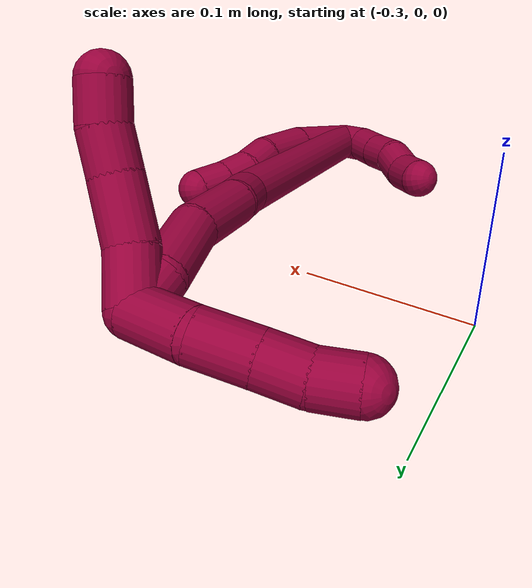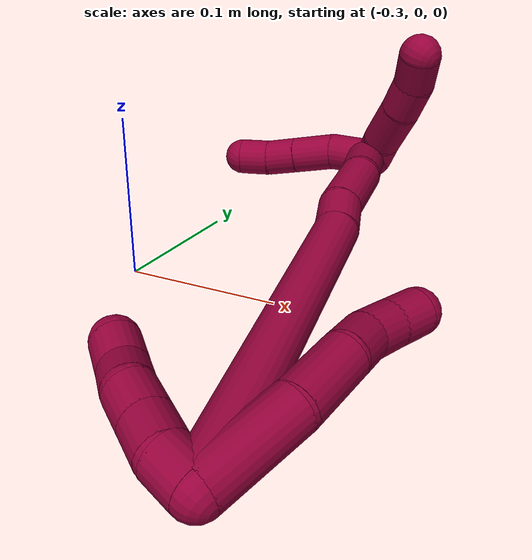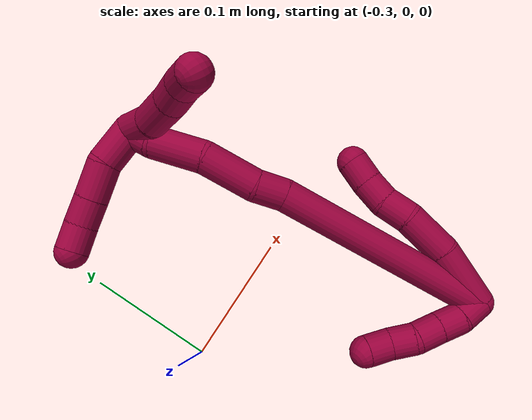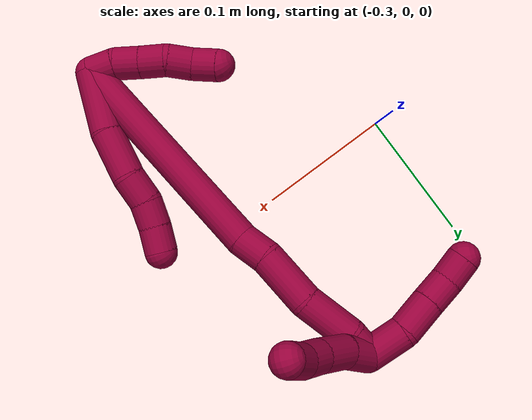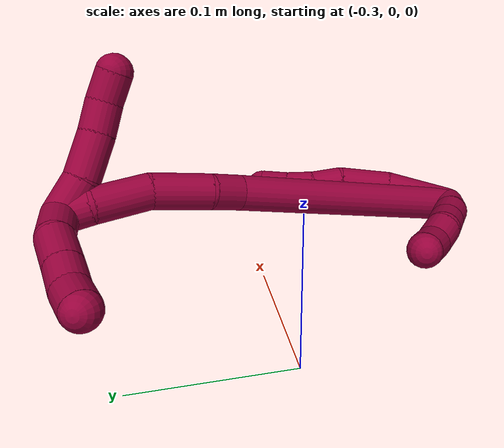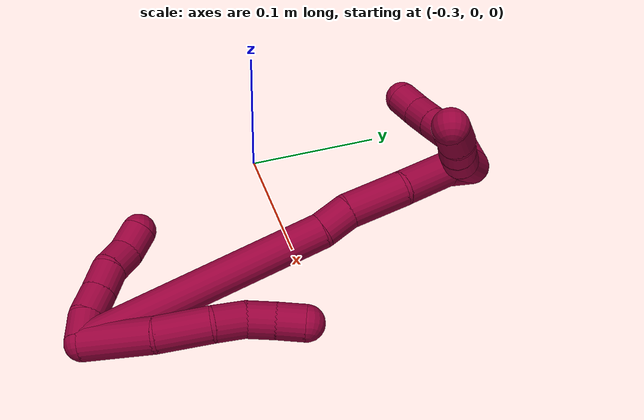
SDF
<sdf version="1.7">
 <world name="default">
  <model name="8">
   <static>0</static>
   <link name="8">
    <collision name="collision-cylinder-e_1_2_8">
     <pose>0.008468 0.023649 0.001055 -1.52622 0.343532 -0.328824</pose>
     <geometry><cylinder><radius>0.0125</radius><length>0.050283</length></cylinder></geometry>
     <surface>
      <friction><ode><mu>1.16</mu><mu2>1.16</mu2><slip1>0</slip1><slip2>0</slip2></ode></friction>
      <contact><ode><kp>1e+06</kp><kd>1</kd><max_vel>0</max_vel><min_depth>0.001</min_depth></ode></contact>
     </surface>
    </collision>
    <visual name="visual-cylinder-e_1_2_8">
     <pose>0.008468 0.023649 0.001055 -1.52622 0.343532 -0.328824</pose>
     <geometry><cylinder><radius>0.0125</radius><length>0.050283</length></cylinder></geometry>
     <material><ambient>0.584314 0 0.227451 1</ambient></material>
    </visual>
    <collision name="collision-cylinder-e_2_8_9">
     <pose>0.020432 0.065397 0.005538 -1.38359 0.187533 -0.155487</pose>
     <geometry><cylinder><radius>0.0125</radius><length>0.0375</length></cylinder></geometry>
     <surface>
      <friction><ode><mu>1.16</mu><mu2>1.16</mu2><slip1>0</slip1><slip2>0</slip2></ode></friction>
      <contact><ode><kp>1e+06</kp><kd>1</kd><max_vel>0</max_vel><min_depth>0.001</min_depth></ode></contact>
     </surface>
    </collision>
    <visual name="visual-cylinder-e_2_8_9">
     <pose>0.020432 0.065397 0.005538 -1.38359 0.187533 -0.155487</pose>
     <geometry><cylinder><radius>0.0125</radius><length>0.0375</length></cylinder></geometry>
     <material><ambient>0.584314 0 0.227451 1</ambient></material>
    </visual>
    <collision name="collision-cylinder-e_3_9_10">
     <pose>0.023272 0.094221 0.011611 -1.32908 -0.059243 0.046417</pose>
     <geometry><cylinder><radius>0.0125</radius><length>0.02213</length></cylinder></geometry>
     <surface>
      <friction><ode><mu>1.16</mu><mu2>1.16</mu2><slip1>0</slip1><slip2>0</slip2></ode></friction>
      <contact><ode><kp>1e+06</kp><kd>1</kd><max_vel>0</max_vel><min_depth>0.001</min_depth></ode></contact>
     </surface>
    </collision>
    <visual name="visual-cylinder-e_3_9_10">
     <pose>0.023272 0.094221 0.011611 -1.32908 -0.059243 0.046417</pose>
     <geometry><cylinder><radius>0.0125</radius><length>0.02213</length></cylinder></geometry>
     <material><ambient>0.584314 0 0.227451 1</ambient></material>
    </visual>
    <collision name="collision-cylinder-e_4_10_11">
     <pose>0.023068 0.114965 0.014178 -1.5785 0.045033 -0.045381</pose>
     <geometry><cylinder><radius>0.0125</radius><length>0.02006</length></cylinder></geometry>
     <surface>
      <friction><ode><mu>1.16</mu><mu2>1.16</mu2><slip1>0</slip1><slip2>0</slip2></ode></friction>
      <contact><ode><kp>1e+06</kp><kd>1</kd><max_vel>0</max_vel><min_depth>0.001</min_depth></ode></contact>
     </surface>
    </collision>
    <visual name="visual-cylinder-e_4_10_11">
     <pose>0.023068 0.114965 0.014178 -1.5785 0.045033 -0.045381</pose>
     <geometry><cylinder><radius>0.0125</radius><length>0.02006</length></cylinder></geometry>
     <material><ambient>0.584314 0 0.227451 1</ambient></material>
    </visual>
    <collision name="collision-cylinder-e_5_11_6">
     <pose>0.024906 0.134874 0.013363 -1.6452 0.13887 -0.149568</pose>
     <geometry><cylinder><radius>0.0125</radius><length>0.020027</length></cylinder></geometry>
     <surface>
      <friction><ode><mu>1.16</mu><mu2>1.16</mu2><slip1>0</slip1><slip2>0</slip2></ode></friction>
      <contact><ode><kp>1e+06</kp><kd>1</kd><max_vel>0</max_vel><min_depth>0.001</min_depth></ode></contact>
     </surface>
    </collision>
    <visual name="visual-cylinder-e_5_11_6">
     <pose>0.024906 0.134874 0.013363 -1.6452 0.13887 -0.149568</pose>
     <geometry><cylinder><radius>0.0125</radius><length>0.020027</length></cylinder></geometry>
     <material><ambient>0.584314 0 0.227451 1</ambient></material>
    </visual>
    <collision name="collision-cylinder-e_1_2_12">
     <pose>-0.001628 0.00021 0.009864 -0.021312 -0.163513 0.001746</pose>
     <geometry><cylinder><radius>0.0125</radius><length>0.02</length></cylinder></geometry>
     <surface>
      <friction><ode><mu>1.16</mu><mu2>1.16</mu2><slip1>0</slip1><slip2>0</slip2></ode></friction>
      <contact><ode><kp>1e+06</kp><kd>1</kd><max_vel>0</max_vel><min_depth>0.001</min_depth></ode></contact>
     </surface>
    </collision>
    <visual name="visual-cylinder-e_1_2_12">
     <pose>-0.001628 0.00021 0.009864 -0.021312 -0.163513 0.001746</pose>
     <geometry><cylinder><radius>0.0125</radius><length>0.02</length></cylinder></geometry>
     <material><ambient>0.584314 0 0.227451 1</ambient></material>
    </visual>
    <collision name="collision-cylinder-e_2_12_13">
     <pose>-0.005033 0.003394 0.02911 -0.306939 -0.178652 0.027707</pose>
     <geometry><cylinder><radius>0.0125</radius><length>0.02</length></cylinder></geometry>
     <surface>
      <friction><ode><mu>1.16</mu><mu2>1.16</mu2><slip1>0</slip1><slip2>0</slip2></ode></friction>
      <contact><ode><kp>1e+06</kp><kd>1</kd><max_vel>0</max_vel><min_depth>0.001</min_depth></ode></contact>
     </surface>
    </collision>
    <visual name="visual-cylinder-e_2_12_13">
     <pose>-0.005033 0.003394 0.02911 -0.306939 -0.178652 0.027707</pose>
     <geometry><cylinder><radius>0.0125</radius><length>0.02</length></cylinder></geometry>
     <material><ambient>0.584314 0 0.227451 1</ambient></material>
    </visual>
    <collision name="collision-cylinder-e_3_13_14">
     <pose>-0.008141 0.009091 0.04802 -0.278398 -0.133494 0.018731</pose>
     <geometry><cylinder><radius>0.0125</radius><length>0.02</length></cylinder></geometry>
     <surface>
      <friction><ode><mu>1.16</mu><mu2>1.16</mu2><slip1>0</slip1><slip2>0</slip2></ode></friction>
      <contact><ode><kp>1e+06</kp><kd>1</kd><max_vel>0</max_vel><min_depth>0.001</min_depth></ode></contact>
     </surface>
    </collision>
    <visual name="visual-cylinder-e_3_13_14">
     <pose>-0.008141 0.009091 0.04802 -0.278398 -0.133494 0.018731</pose>
     <geometry><cylinder><radius>0.0125</radius><length>0.02</length></cylinder></geometry>
     <material><ambient>0.584314 0 0.227451 1</ambient></material>
    </visual>
    <collision name="collision-cylinder-e_4_14_15">
     <pose>-0.013006 0.016632 0.065568 -0.541002 -0.361201 0.101177</pose>
     <geometry><cylinder><radius>0.0125</radius><length>0.02</length></cylinder></geometry>
     <surface>
      <friction><ode><mu>1.16</mu><mu2>1.16</mu2><slip1>0</slip1><slip2>0</slip2></ode></friction>
      <contact><ode><kp>1e+06</kp><kd>1</kd><max_vel>0</max_vel><min_depth>0.001</min_depth></ode></contact>
     </surface>
    </collision>
    <visual name="visual-cylinder-e_4_14_15">
     <pose>-0.013006 0.016632 0.065568 -0.541002 -0.361201 0.101177</pose>
     <geometry><cylinder><radius>0.0125</radius><length>0.02</length></cylinder></geometry>
     <material><ambient>0.584314 0 0.227451 1</ambient></material>
    </visual>
    <collision name="collision-cylinder-e_5_15_5">
     <pose>-0.017167 0.025317 0.082788 -0.397935 -0.062746 0.012656</pose>
     <geometry><cylinder><radius>0.0125</radius><length>0.02</length></cylinder></geometry>
     <surface>
      <friction><ode><mu>1.16</mu><mu2>1.16</mu2><slip1>0</slip1><slip2>0</slip2></ode></friction>
      <contact><ode><kp>1e+06</kp><kd>1</kd><max_vel>0</max_vel><min_depth>0.001</min_depth></ode></contact>
     </surface>
    </collision>
    <visual name="visual-cylinder-e_5_15_5">
     <pose>-0.017167 0.025317 0.082788 -0.397935 -0.062746 0.012656</pose>
     <geometry><cylinder><radius>0.0125</radius><length>0.02</length></cylinder></geometry>
     <material><ambient>0.584314 0 0.227451 1</ambient></material>
    </visual>
    <collision name="collision-cylinder-e_1_2_16">
     <pose>0.014669 0.076989 0.039425 -1.09753 0.16799 -0.102862</pose>
     <geometry><cylinder><radius>0.0125</radius><length>0.175464</length></cylinder></geometry>
     <surface>
      <friction><ode><mu>1.16</mu><mu2>1.16</mu2><slip1>0</slip1><slip2>0</slip2></ode></friction>
      <contact><ode><kp>1e+06</kp><kd>1</kd><max_vel>0</max_vel><min_depth>0.001</min_depth></ode></contact>
     </surface>
    </collision>
    <visual name="visual-cylinder-e_1_2_16">
     <pose>0.014669 0.076989 0.039425 -1.09753 0.16799 -0.102862</pose>
     <geometry><cylinder><radius>0.0125</radius><length>0.175464</length></cylinder></geometry>
     <material><ambient>0.584314 0 0.227451 1</ambient></material>
    </visual>
    <collision name="collision-cylinder-e_2_16_17">
     <pose>0.031112 0.162647 0.085995 -0.881399 0.156612 -0.073981</pose>
     <geometry><cylinder><radius>0.0125</radius><length>0.022746</length></cylinder></geometry>
     <surface>
      <friction><ode><mu>1.16</mu><mu2>1.16</mu2><slip1>0</slip1><slip2>0</slip2></ode></friction>
      <contact><ode><kp>1e+06</kp><kd>1</kd><max_vel>0</max_vel><min_depth>0.001</min_depth></ode></contact>
     </surface>
    </collision>
    <visual name="visual-cylinder-e_2_16_17">
     <pose>0.031112 0.162647 0.085995 -0.881399 0.156612 -0.073981</pose>
     <geometry><cylinder><radius>0.0125</radius><length>0.022746</length></cylinder></geometry>
     <material><ambient>0.584314 0 0.227451 1</ambient></material>
    </visual>
    <collision name="collision-cylinder-e_3_17_18">
     <pose>0.035444 0.189962 0.102012 -1.12672 0.123269 -0.07792</pose>
     <geometry><cylinder><radius>0.0125</radius><length>0.041615</length></cylinder></geometry>
     <surface>
      <friction><ode><mu>1.16</mu><mu2>1.16</mu2><slip1>0</slip1><slip2>0</slip2></ode></friction>
      <contact><ode><kp>1e+06</kp><kd>1</kd><max_vel>0</max_vel><min_depth>0.001</min_depth></ode></contact>
     </surface>
    </collision>
    <visual name="visual-cylinder-e_3_17_18">
     <pose>0.035444 0.189962 0.102012 -1.12672 0.123269 -0.07792</pose>
     <geometry><cylinder><radius>0.0125</radius><length>0.041615</length></cylinder></geometry>
     <material><ambient>0.584314 0 0.227451 1</ambient></material>
    </visual>
    <collision name="collision-cylinder-e_4_18_19">
     <pose>0.0356 0.225327 0.121195 -1.01814 -0.1217 0.067983</pose>
     <geometry><cylinder><radius>0.0125</radius><length>0.039576</length></cylinder></geometry>
     <surface>
      <friction><ode><mu>1.16</mu><mu2>1.16</mu2><slip1>0</slip1><slip2>0</slip2></ode></friction>
      <contact><ode><kp>1e+06</kp><kd>1</kd><max_vel>0</max_vel><min_depth>0.001</min_depth></ode></contact>
     </surface>
    </collision>
    <visual name="visual-cylinder-e_4_18_19">
     <pose>0.0356 0.225327 0.121195 -1.01814 -0.1217 0.067983</pose>
     <geometry><cylinder><radius>0.0125</radius><length>0.039576</length></cylinder></geometry>
     <material><ambient>0.584314 0 0.227451 1</ambient></material>
    </visual>
    <collision name="collision-cylinder-e_5_19_1">
     <pose>0.031189 0.251719 0.134414 -1.2788 -0.196297 0.146178</pose>
     <geometry><cylinder><radius>0.0125</radius><length>0.020599</length></cylinder></geometry>
     <surface>
      <friction><ode><mu>1.16</mu><mu2>1.16</mu2><slip1>0</slip1><slip2>0</slip2></ode></friction>
      <contact><ode><kp>1e+06</kp><kd>1</kd><max_vel>0</max_vel><min_depth>0.001</min_depth></ode></contact>
     </surface>
    </collision>
    <visual name="visual-cylinder-e_5_19_1">
     <pose>0.031189 0.251719 0.134414 -1.2788 -0.196297 0.146178</pose>
     <geometry><cylinder><radius>0.0125</radius><length>0.020599</length></cylinder></geometry>
     <material><ambient>0.584314 0 0.227451 1</ambient></material>
    </visual>
    <collision name="collision-cylinder-e_1_1_20">
     <pose>0.024013 0.257813 0.151486 0.247566 -0.339954 -0.042702</pose>
     <geometry><cylinder><radius>0.0125</radius><length>0.030994</length></cylinder></geometry>
     <surface>
      <friction><ode><mu>1.16</mu><mu2>1.16</mu2><slip1>0</slip1><slip2>0</slip2></ode></friction>
      <contact><ode><kp>1e+06</kp><kd>1</kd><max_vel>0</max_vel><min_depth>0.001</min_depth></ode></contact>
     </surface>
    </collision>
    <visual name="visual-cylinder-e_1_1_20">
     <pose>0.024013 0.257813 0.151486 0.247566 -0.339954 -0.042702</pose>
     <geometry><cylinder><radius>0.0125</radius><length>0.030994</length></cylinder></geometry>
     <material><ambient>0.584314 0 0.227451 1</ambient></material>
    </visual>
    <collision name="collision-cylinder-e_2_20_21">
     <pose>0.011936 0.248122 0.176005 0.533172 -0.521611 -0.145507</pose>
     <geometry><cylinder><radius>0.0125</radius><length>0.027733</length></cylinder></geometry>
     <surface>
      <friction><ode><mu>1.16</mu><mu2>1.16</mu2><slip1>0</slip1><slip2>0</slip2></ode></friction>
      <contact><ode><kp>1e+06</kp><kd>1</kd><max_vel>0</max_vel><min_depth>0.001</min_depth></ode></contact>
     </surface>
    </collision>
    <visual name="visual-cylinder-e_2_20_21">
     <pose>0.011936 0.248122 0.176005 0.533172 -0.521611 -0.145507</pose>
     <geometry><cylinder><radius>0.0125</radius><length>0.027733</length></cylinder></geometry>
     <material><ambient>0.584314 0 0.227451 1</ambient></material>
    </visual>
    <collision name="collision-cylinder-e_3_21_22">
     <pose>-0.000267 0.237557 0.194322 0.510006 -0.525682 -0.14005</pose>
     <geometry><cylinder><radius>0.0125</radius><length>0.021096</length></cylinder></geometry>
     <surface>
      <friction><ode><mu>1.16</mu><mu2>1.16</mu2><slip1>0</slip1><slip2>0</slip2></ode></friction>
      <contact><ode><kp>1e+06</kp><kd>1</kd><max_vel>0</max_vel><min_depth>0.001</min_depth></ode></contact>
     </surface>
    </collision>
    <visual name="visual-cylinder-e_3_21_22">
     <pose>-0.000267 0.237557 0.194322 0.510006 -0.525682 -0.14005</pose>
     <geometry><cylinder><radius>0.0125</radius><length>0.021096</length></cylinder></geometry>
     <material><ambient>0.584314 0 0.227451 1</ambient></material>
    </visual>
    <collision name="collision-cylinder-e_4_22_4">
     <pose>-0.008953 0.227721 0.210113 0.602268 -0.343059 -0.107501</pose>
     <geometry><cylinder><radius>0.0125</radius><length>0.020177</length></cylinder></geometry>
     <surface>
      <friction><ode><mu>1.16</mu><mu2>1.16</mu2><slip1>0</slip1><slip2>0</slip2></ode></friction>
      <contact><ode><kp>1e+06</kp><kd>1</kd><max_vel>0</max_vel><min_depth>0.001</min_depth></ode></contact>
     </surface>
    </collision>
    <visual name="visual-cylinder-e_4_22_4">
     <pose>-0.008953 0.227721 0.210113 0.602268 -0.343059 -0.107501</pose>
     <geometry><cylinder><radius>0.0125</radius><length>0.020177</length></cylinder></geometry>
     <material><ambient>0.584314 0 0.227451 1</ambient></material>
    </visual>
    <collision name="collision-cylinder-e_1_1_23">
     <pose>0.039603 0.254551 0.133081 2.12565 0.913178 1.44597</pose>
     <geometry><cylinder><radius>0.0125</radius><length>0.026339</length></cylinder></geometry>
     <surface>
      <friction><ode><mu>1.16</mu><mu2>1.16</mu2><slip1>0</slip1><slip2>0</slip2></ode></friction>
      <contact><ode><kp>1e+06</kp><kd>1</kd><max_vel>0</max_vel><min_depth>0.001</min_depth></ode></contact>
     </surface>
    </collision>
    <visual name="visual-cylinder-e_1_1_23">
     <pose>0.039603 0.254551 0.133081 2.12565 0.913178 1.44597</pose>
     <geometry><cylinder><radius>0.0125</radius><length>0.026339</length></cylinder></geometry>
     <material><ambient>0.584314 0 0.227451 1</ambient></material>
    </visual>
    <collision name="collision-cylinder-e_2_23_24">
     <pose>0.064065 0.242694 0.124133 2.32456 1.11527 1.92811</pose>
     <geometry><cylinder><radius>0.0125</radius><length>0.031267</length></cylinder></geometry>
     <surface>
      <friction><ode><mu>1.16</mu><mu2>1.16</mu2><slip1>0</slip1><slip2>0</slip2></ode></friction>
      <contact><ode><kp>1e+06</kp><kd>1</kd><max_vel>0</max_vel><min_depth>0.001</min_depth></ode></contact>
     </surface>
    </collision>
    <visual name="visual-cylinder-e_2_23_24">
     <pose>0.064065 0.242694 0.124133 2.32456 1.11527 1.92811</pose>
     <geometry><cylinder><radius>0.0125</radius><length>0.031267</length></cylinder></geometry>
     <material><ambient>0.584314 0 0.227451 1</ambient></material>
    </visual>
    <collision name="collision-cylinder-e_3_24_25">
     <pose>0.088284 0.234679 0.117133 2.22348 1.21554 1.90603</pose>
     <geometry><cylinder><radius>0.0125</radius><length>0.021715</length></cylinder></geometry>
     <surface>
      <friction><ode><mu>1.16</mu><mu2>1.16</mu2><slip1>0</slip1><slip2>0</slip2></ode></friction>
      <contact><ode><kp>1e+06</kp><kd>1</kd><max_vel>0</max_vel><min_depth>0.001</min_depth></ode></contact>
     </surface>
    </collision>
    <visual name="visual-cylinder-e_3_24_25">
     <pose>0.088284 0.234679 0.117133 2.22348 1.21554 1.90603</pose>
     <geometry><cylinder><radius>0.0125</radius><length>0.021715</length></cylinder></geometry>
     <material><ambient>0.584314 0 0.227451 1</ambient></material>
    </visual>
    <collision name="collision-cylinder-e_4_25_3">
     <pose>0.107833 0.227339 0.114313 1.69149 1.13426 1.24652</pose>
     <geometry><cylinder><radius>0.0125</radius><length>0.020679</length></cylinder></geometry>
     <surface>
      <friction><ode><mu>1.16</mu><mu2>1.16</mu2><slip1>0</slip1><slip2>0</slip2></ode></friction>
      <contact><ode><kp>1e+06</kp><kd>1</kd><max_vel>0</max_vel><min_depth>0.001</min_depth></ode></contact>
     </surface>
    </collision>
    <visual name="visual-cylinder-e_4_25_3">
     <pose>0.107833 0.227339 0.114313 1.69149 1.13426 1.24652</pose>
     <geometry><cylinder><radius>0.0125</radius><length>0.020679</length></cylinder></geometry>
     <material><ambient>0.584314 0 0.227451 1</ambient></material>
    </visual>
    <collision name="collision-sphere-3">
     <pose>0.117203 0.222999 0.113786 0 -0 0</pose>
     <geometry><sphere><radius>0.0125</radius></sphere></geometry>
     <surface>
      <friction><ode><mu>1.16</mu><mu2>1.16</mu2><slip1>0</slip1><slip2>0</slip2></ode></friction>
      <contact><ode><kp>1e+06</kp><kd>1</kd><max_vel>0</max_vel><min_depth>0.001</min_depth></ode></contact>
     </surface>
    </collision>
    <visual name="visual-sphere-3">
     <pose>0.117203 0.222999 0.113786 0 -0 0</pose>
     <geometry><sphere><radius>0.0125</radius></sphere></geometry>
     <material><ambient>0.584314 0 0.227451 1</ambient></material>
    </visual>
    <collision name="collision-sphere-25">
     <pose>0.098463 0.231679 0.114839 0 -0 0</pose>
     <geometry><sphere><radius>0.0125</radius></sphere></geometry>
     <surface>
      <friction><ode><mu>1.16</mu><mu2>1.16</mu2><slip1>0</slip1><slip2>0</slip2></ode></friction>
      <contact><ode><kp>1e+06</kp><kd>1</kd><max_vel>0</max_vel><min_depth>0.001</min_depth></ode></contact>
     </surface>
    </collision>
    <visual name="visual-sphere-25">
     <pose>0.098463 0.231679 0.114839 0 -0 0</pose>
     <geometry><sphere><radius>0.0125</radius></sphere></geometry>
     <material><ambient>0.584314 0 0.227451 1</ambient></material>
    </visual>
    <collision name="collision-sphere-24">
     <pose>0.078105 0.23768 0.119426 0 -0 0</pose>
     <geometry><sphere><radius>0.0125</radius></sphere></geometry>
     <surface>
      <friction><ode><mu>1.16</mu><mu2>1.16</mu2><slip1>0</slip1><slip2>0</slip2></ode></friction>
      <contact><ode><kp>1e+06</kp><kd>1</kd><max_vel>0</max_vel><min_depth>0.001</min_depth></ode></contact>
     </surface>
    </collision>
    <visual name="visual-sphere-24">
     <pose>0.078105 0.23768 0.119426 0 -0 0</pose>
     <geometry><sphere><radius>0.0125</radius></sphere></geometry>
     <material><ambient>0.584314 0 0.227451 1</ambient></material>
    </visual>
    <collision name="collision-sphere-23">
     <pose>0.050026 0.247709 0.12884 0 -0 0</pose>
     <geometry><sphere><radius>0.0125</radius></sphere></geometry>
     <surface>
      <friction><ode><mu>1.16</mu><mu2>1.16</mu2><slip1>0</slip1><slip2>0</slip2></ode></friction>
      <contact><ode><kp>1e+06</kp><kd>1</kd><max_vel>0</max_vel><min_depth>0.001</min_depth></ode></contact>
     </surface>
    </collision>
    <visual name="visual-sphere-23">
     <pose>0.050026 0.247709 0.12884 0 -0 0</pose>
     <geometry><sphere><radius>0.0125</radius></sphere></geometry>
     <material><ambient>0.584314 0 0.227451 1</ambient></material>
    </visual>
    <collision name="collision-sphere-4">
     <pose>-0.012347 0.222339 0.217942 0 -0 0</pose>
     <geometry><sphere><radius>0.0125</radius></sphere></geometry>
     <surface>
      <friction><ode><mu>1.16</mu><mu2>1.16</mu2><slip1>0</slip1><slip2>0</slip2></ode></friction>
      <contact><ode><kp>1e+06</kp><kd>1</kd><max_vel>0</max_vel><min_depth>0.001</min_depth></ode></contact>
     </surface>
    </collision>
    <visual name="visual-sphere-4">
     <pose>-0.012347 0.222339 0.217942 0 -0 0</pose>
     <geometry><sphere><radius>0.0125</radius></sphere></geometry>
     <material><ambient>0.584314 0 0.227451 1</ambient></material>
    </visual>
    <collision name="collision-sphere-22">
     <pose>-0.00556 0.233103 0.202284 0 -0 0</pose>
     <geometry><sphere><radius>0.0125</radius></sphere></geometry>
     <surface>
      <friction><ode><mu>1.16</mu><mu2>1.16</mu2><slip1>0</slip1><slip2>0</slip2></ode></friction>
      <contact><ode><kp>1e+06</kp><kd>1</kd><max_vel>0</max_vel><min_depth>0.001</min_depth></ode></contact>
     </surface>
    </collision>
    <visual name="visual-sphere-22">
     <pose>-0.00556 0.233103 0.202284 0 -0 0</pose>
     <geometry><sphere><radius>0.0125</radius></sphere></geometry>
     <material><ambient>0.584314 0 0.227451 1</ambient></material>
    </visual>
    <collision name="collision-sphere-21">
     <pose>0.005026 0.242011 0.186359 0 -0 0</pose>
     <geometry><sphere><radius>0.0125</radius></sphere></geometry>
     <surface>
      <friction><ode><mu>1.16</mu><mu2>1.16</mu2><slip1>0</slip1><slip2>0</slip2></ode></friction>
      <contact><ode><kp>1e+06</kp><kd>1</kd><max_vel>0</max_vel><min_depth>0.001</min_depth></ode></contact>
     </surface>
    </collision>
    <visual name="visual-sphere-21">
     <pose>0.005026 0.242011 0.186359 0 -0 0</pose>
     <geometry><sphere><radius>0.0125</radius></sphere></geometry>
     <material><ambient>0.584314 0 0.227451 1</ambient></material>
    </visual>
    <collision name="collision-sphere-20">
     <pose>0.018845 0.254233 0.165651 0 -0 0</pose>
     <geometry><sphere><radius>0.0125</radius></sphere></geometry>
     <surface>
      <friction><ode><mu>1.16</mu><mu2>1.16</mu2><slip1>0</slip1><slip2>0</slip2></ode></friction>
      <contact><ode><kp>1e+06</kp><kd>1</kd><max_vel>0</max_vel><min_depth>0.001</min_depth></ode></contact>
     </surface>
    </collision>
    <visual name="visual-sphere-20">
     <pose>0.018845 0.254233 0.165651 0 -0 0</pose>
     <geometry><sphere><radius>0.0125</radius></sphere></geometry>
     <material><ambient>0.584314 0 0.227451 1</ambient></material>
    </visual>
    <collision name="collision-sphere-6">
     <pose>0.026292 0.144764 0.012626 0 -0 0</pose>
     <geometry><sphere><radius>0.0125</radius></sphere></geometry>
     <surface>
      <friction><ode><mu>1.16</mu><mu2>1.16</mu2><slip1>0</slip1><slip2>0</slip2></ode></friction>
      <contact><ode><kp>1e+06</kp><kd>1</kd><max_vel>0</max_vel><min_depth>0.001</min_depth></ode></contact>
     </surface>
    </collision>
    <visual name="visual-sphere-6">
     <pose>0.026292 0.144764 0.012626 0 -0 0</pose>
     <geometry><sphere><radius>0.0125</radius></sphere></geometry>
     <material><ambient>0.584314 0 0.227451 1</ambient></material>
    </visual>
    <collision name="collision-sphere-11">
     <pose>0.02352 0.124985 0.0141 0 -0 0</pose>
     <geometry><sphere><radius>0.0125</radius></sphere></geometry>
     <surface>
      <friction><ode><mu>1.16</mu><mu2>1.16</mu2><slip1>0</slip1><slip2>0</slip2></ode></friction>
      <contact><ode><kp>1e+06</kp><kd>1</kd><max_vel>0</max_vel><min_depth>0.001</min_depth></ode></contact>
     </surface>
    </collision>
    <visual name="visual-sphere-11">
     <pose>0.02352 0.124985 0.0141 0 -0 0</pose>
     <geometry><sphere><radius>0.0125</radius></sphere></geometry>
     <material><ambient>0.584314 0 0.227451 1</ambient></material>
    </visual>
    <collision name="collision-sphere-10">
     <pose>0.022617 0.104946 0.014255 0 -0 0</pose>
     <geometry><sphere><radius>0.0125</radius></sphere></geometry>
     <surface>
      <friction><ode><mu>1.16</mu><mu2>1.16</mu2><slip1>0</slip1><slip2>0</slip2></ode></friction>
      <contact><ode><kp>1e+06</kp><kd>1</kd><max_vel>0</max_vel><min_depth>0.001</min_depth></ode></contact>
     </surface>
    </collision>
    <visual name="visual-sphere-10">
     <pose>0.022617 0.104946 0.014255 0 -0 0</pose>
     <geometry><sphere><radius>0.0125</radius></sphere></geometry>
     <material><ambient>0.584314 0 0.227451 1</ambient></material>
    </visual>
    <collision name="collision-sphere-9">
     <pose>0.023927 0.083496 0.008967 0 -0 0</pose>
     <geometry><sphere><radius>0.0125</radius></sphere></geometry>
     <surface>
      <friction><ode><mu>1.16</mu><mu2>1.16</mu2><slip1>0</slip1><slip2>0</slip2></ode></friction>
      <contact><ode><kp>1e+06</kp><kd>1</kd><max_vel>0</max_vel><min_depth>0.001</min_depth></ode></contact>
     </surface>
    </collision>
    <visual name="visual-sphere-9">
     <pose>0.023927 0.083496 0.008967 0 -0 0</pose>
     <geometry><sphere><radius>0.0125</radius></sphere></geometry>
     <material><ambient>0.584314 0 0.227451 1</ambient></material>
    </visual>
    <collision name="collision-sphere-2">
     <geometry><sphere><radius>0.0125</radius></sphere></geometry>
     <surface>
      <friction><ode><mu>1.16</mu><mu2>1.16</mu2><slip1>0</slip1><slip2>0</slip2></ode></friction>
      <contact><ode><kp>1e+06</kp><kd>1</kd><max_vel>0</max_vel><min_depth>0.001</min_depth></ode></contact>
     </surface>
    </collision>
    <visual name="visual-sphere-2">
     <geometry><sphere><radius>0.0125</radius></sphere></geometry>
     <material><ambient>0.584314 0 0.227451 1</ambient></material>
    </visual>
    <collision name="collision-sphere-19">
     <pose>0.033198 0.242045 0.131506 0 -0 0</pose>
     <geometry><sphere><radius>0.0125</radius></sphere></geometry>
     <surface>
      <friction><ode><mu>1.16</mu><mu2>1.16</mu2><slip1>0</slip1><slip2>0</slip2></ode></friction>
      <contact><ode><kp>1e+06</kp><kd>1</kd><max_vel>0</max_vel><min_depth>0.001</min_depth></ode></contact>
     </surface>
    </collision>
    <visual name="visual-sphere-19">
     <pose>0.033198 0.242045 0.131506 0 -0 0</pose>
     <geometry><sphere><radius>0.0125</radius></sphere></geometry>
     <material><ambient>0.584314 0 0.227451 1</ambient></material>
    </visual>
    <collision name="collision-sphere-8">
     <pose>0.016936 0.047298 0.00211 0 -0 0</pose>
     <geometry><sphere><radius>0.0125</radius></sphere></geometry>
     <surface>
      <friction><ode><mu>1.16</mu><mu2>1.16</mu2><slip1>0</slip1><slip2>0</slip2></ode></friction>
      <contact><ode><kp>1e+06</kp><kd>1</kd><max_vel>0</max_vel><min_depth>0.001</min_depth></ode></contact>
     </surface>
    </collision>
    <visual name="visual-sphere-8">
     <pose>0.016936 0.047298 0.00211 0 -0 0</pose>
     <geometry><sphere><radius>0.0125</radius></sphere></geometry>
     <material><ambient>0.584314 0 0.227451 1</ambient></material>
    </visual>
    <collision name="collision-sphere-12">
     <pose>-0.003256 0.000421 0.019729 0 -0 0</pose>
     <geometry><sphere><radius>0.0125</radius></sphere></geometry>
     <surface>
      <friction><ode><mu>1.16</mu><mu2>1.16</mu2><slip1>0</slip1><slip2>0</slip2></ode></friction>
      <contact><ode><kp>1e+06</kp><kd>1</kd><max_vel>0</max_vel><min_depth>0.001</min_depth></ode></contact>
     </surface>
    </collision>
    <visual name="visual-sphere-12">
     <pose>-0.003256 0.000421 0.019729 0 -0 0</pose>
     <geometry><sphere><radius>0.0125</radius></sphere></geometry>
     <material><ambient>0.584314 0 0.227451 1</ambient></material>
    </visual>
    <collision name="collision-sphere-13">
     <pose>-0.00681 0.006367 0.038491 0 -0 0</pose>
     <geometry><sphere><radius>0.0125</radius></sphere></geometry>
     <surface>
      <friction><ode><mu>1.16</mu><mu2>1.16</mu2><slip1>0</slip1><slip2>0</slip2></ode></friction>
      <contact><ode><kp>1e+06</kp><kd>1</kd><max_vel>0</max_vel><min_depth>0.001</min_depth></ode></contact>
     </surface>
    </collision>
    <visual name="visual-sphere-13">
     <pose>-0.00681 0.006367 0.038491 0 -0 0</pose>
     <geometry><sphere><radius>0.0125</radius></sphere></geometry>
     <material><ambient>0.584314 0 0.227451 1</ambient></material>
    </visual>
    <collision name="collision-sphere-14">
     <pose>-0.009472 0.011815 0.057549 0 -0 0</pose>
     <geometry><sphere><radius>0.0125</radius></sphere></geometry>
     <surface>
      <friction><ode><mu>1.16</mu><mu2>1.16</mu2><slip1>0</slip1><slip2>0</slip2></ode></friction>
      <contact><ode><kp>1e+06</kp><kd>1</kd><max_vel>0</max_vel><min_depth>0.001</min_depth></ode></contact>
     </surface>
    </collision>
    <visual name="visual-sphere-14">
     <pose>-0.009472 0.011815 0.057549 0 -0 0</pose>
     <geometry><sphere><radius>0.0125</radius></sphere></geometry>
     <material><ambient>0.584314 0 0.227451 1</ambient></material>
    </visual>
    <collision name="collision-sphere-15">
     <pose>-0.01654 0.02145 0.073587 0 -0 0</pose>
     <geometry><sphere><radius>0.0125</radius></sphere></geometry>
     <surface>
      <friction><ode><mu>1.16</mu><mu2>1.16</mu2><slip1>0</slip1><slip2>0</slip2></ode></friction>
      <contact><ode><kp>1e+06</kp><kd>1</kd><max_vel>0</max_vel><min_depth>0.001</min_depth></ode></contact>
     </surface>
    </collision>
    <visual name="visual-sphere-15">
     <pose>-0.01654 0.02145 0.073587 0 -0 0</pose>
     <geometry><sphere><radius>0.0125</radius></sphere></geometry>
     <material><ambient>0.584314 0 0.227451 1</ambient></material>
    </visual>
    <collision name="collision-sphere-5">
     <pose>-0.017794 0.029185 0.091988 0 -0 0</pose>
     <geometry><sphere><radius>0.0125</radius></sphere></geometry>
     <surface>
      <friction><ode><mu>1.16</mu><mu2>1.16</mu2><slip1>0</slip1><slip2>0</slip2></ode></friction>
      <contact><ode><kp>1e+06</kp><kd>1</kd><max_vel>0</max_vel><min_depth>0.001</min_depth></ode></contact>
     </surface>
    </collision>
    <visual name="visual-sphere-5">
     <pose>-0.017794 0.029185 0.091988 0 -0 0</pose>
     <geometry><sphere><radius>0.0125</radius></sphere></geometry>
     <material><ambient>0.584314 0 0.227451 1</ambient></material>
    </visual>
    <collision name="collision-sphere-16">
     <pose>0.029338 0.153979 0.07885 0 -0 0</pose>
     <geometry><sphere><radius>0.0125</radius></sphere></geometry>
     <surface>
      <friction><ode><mu>1.16</mu><mu2>1.16</mu2><slip1>0</slip1><slip2>0</slip2></ode></friction>
      <contact><ode><kp>1e+06</kp><kd>1</kd><max_vel>0</max_vel><min_depth>0.001</min_depth></ode></contact>
     </surface>
    </collision>
    <visual name="visual-sphere-16">
     <pose>0.029338 0.153979 0.07885 0 -0 0</pose>
     <geometry><sphere><radius>0.0125</radius></sphere></geometry>
     <material><ambient>0.584314 0 0.227451 1</ambient></material>
    </visual>
    <collision name="collision-sphere-17">
     <pose>0.032885 0.171316 0.093141 0 -0 0</pose>
     <geometry><sphere><radius>0.0125</radius></sphere></geometry>
     <surface>
      <friction><ode><mu>1.16</mu><mu2>1.16</mu2><slip1>0</slip1><slip2>0</slip2></ode></friction>
      <contact><ode><kp>1e+06</kp><kd>1</kd><max_vel>0</max_vel><min_depth>0.001</min_depth></ode></contact>
     </surface>
    </collision>
    <visual name="visual-sphere-17">
     <pose>0.032885 0.171316 0.093141 0 -0 0</pose>
     <geometry><sphere><radius>0.0125</radius></sphere></geometry>
     <material><ambient>0.584314 0 0.227451 1</ambient></material>
    </visual>
    <collision name="collision-sphere-18">
     <pose>0.038002 0.208609 0.110884 0 -0 0</pose>
     <geometry><sphere><radius>0.0125</radius></sphere></geometry>
     <surface>
      <friction><ode><mu>1.16</mu><mu2>1.16</mu2><slip1>0</slip1><slip2>0</slip2></ode></friction>
      <contact><ode><kp>1e+06</kp><kd>1</kd><max_vel>0</max_vel><min_depth>0.001</min_depth></ode></contact>
     </surface>
    </collision>
    <visual name="visual-sphere-18">
     <pose>0.038002 0.208609 0.110884 0 -0 0</pose>
     <geometry><sphere><radius>0.0125</radius></sphere></geometry>
     <material><ambient>0.584314 0 0.227451 1</ambient></material>
    </visual>
    <collision name="collision-sphere-1">
     <pose>0.02918 0.261393 0.137322 0 -0 0</pose>
     <geometry><sphere><radius>0.0125</radius></sphere></geometry>
     <surface>
      <friction><ode><mu>1.16</mu><mu2>1.16</mu2><slip1>0</slip1><slip2>0</slip2></ode></friction>
      <contact><ode><kp>1e+06</kp><kd>1</kd><max_vel>0</max_vel><min_depth>0.001</min_depth></ode></contact>
     </surface>
    </collision>
    <visual name="visual-sphere-1">
     <pose>0.02918 0.261393 0.137322 0 -0 0</pose>
     <geometry><sphere><radius>0.0125</radius></sphere></geometry>
     <material><ambient>0.584314 0 0.227451 1</ambient></material>
    </visual>
    <inertial>
     <pose>0.022212 0.132815 0.07556 0 -0 0</pose>
     <mass>0.75</mass>
     <inertia>
      <ixx>0.000462</ixx>
      <ixy>0</ixy>
      <ixz>0</ixz>
      <iyy>0.00023</iyy>
      <iyz>0</iyz>
      <izz>-0.000495</izz>
     </inertia>
    </inertial>
   </link>
   <pose>-0.147874 -0.160778 0.011887 -0.315155 -1.21049 0.013795</pose>
  </model>
 </world>
</sdf>
